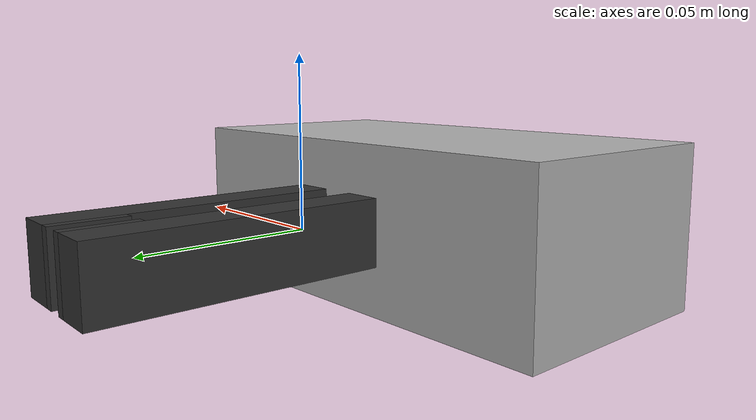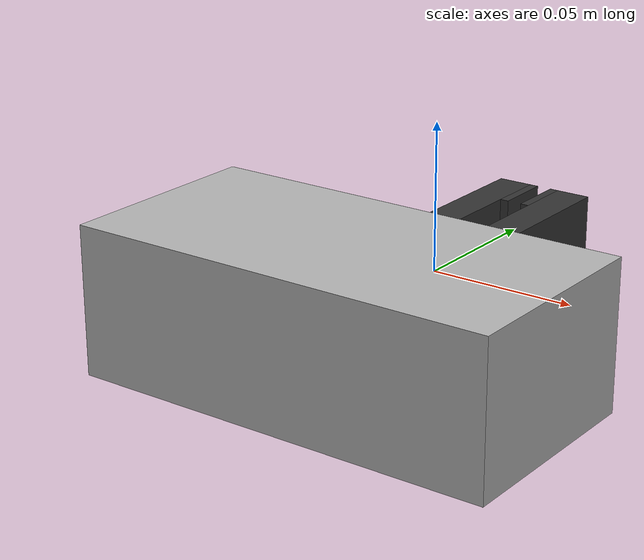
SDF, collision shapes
<?xml version="1.0"?>
<!-- This sdf file is based on schunk_wsg_50.sdf -->
<sdf version="1.7">
  <model name="Schunk_Gripper">
    <link name="body">
      <pose>0 -0.049133 0 0 0 0</pose>
      <inertial>
        <mass>0.988882</mass>
        <inertia>
          <ixx>0.162992</ixx>
          <ixy>0</ixy>
          <ixz>0</ixz>
          <iyy>0.162992</iyy>
          <iyz>0</iyz>
          <izz>0.164814</izz>
        </inertia>
      </inertial>
      <kinematic>0</kinematic>
      <visual name="visual">
        <geometry>
          <mesh>
            <scale>1 1 1</scale>
            <uri>package://drake_models/wsg_50_description/meshes/wsg_body.gltf</uri>
          </mesh>
        </geometry>
        <material>
          <diffuse>0.7 0.7 0.7 1</diffuse>
        </material>
      </visual>
      <collision name="collision">
        <geometry>
          <box>
            <size>0.146 0.0725 0.05</size>
          </box>
        </geometry>
        <drake:proximity_properties>
          <drake:compliant_hydroelastic/>
          <drake:hydroelastic_modulus>1.0e4</drake:hydroelastic_modulus>
        </drake:proximity_properties>
      </collision>
    </link>
    <frame name="body_frame">
      <pose relative_to="body"/>
    </frame>
    <link name="left_finger">
      <pose>-0.0115 0.028 0 0 3.141592 0</pose>
      <inertial>
        <mass>0.05</mass>
        <inertia>
          <ixx>0.16</ixx>
          <ixy>0</ixy>
          <ixz>0</ixz>
          <iyy>0.16</iyy>
          <iyz>0</iyz>
          <izz>0.16</izz>
        </inertia>
      </inertial>
      <kinematic>0</kinematic>
      <visual name="visual">
        <geometry>
          <mesh>
            <scale>1 1 1</scale>
            <uri>package://drake_models/wsg_50_description/meshes/finger_with_tip.obj</uri>
          </mesh>
        </geometry>
        <material>
          <diffuse>0.2 0.2 0.2 1</diffuse>
        </material>
      </visual>
      <collision name="left_tip">
        <pose> -0.0075 0.031 0 0 0 0 </pose>
        <geometry>
          <box>
            <size>0.003 0.02 0.02</size>
          </box>
        </geometry>
        <drake:proximity_properties>
          <drake:compliant_hydroelastic/>
          <drake:hydroelastic_modulus>1.0e4</drake:hydroelastic_modulus>
          <drake:mu_static>100.0</drake:mu_static>
          <drake:mu_dynamic>100.0</drake:mu_dynamic>
        </drake:proximity_properties>
      </collision>
      <collision name="collision">
        <geometry>
          <box>
            <size>0.012 0.082 0.02</size>
          </box>
        </geometry>
        <drake:proximity_properties>
          <drake:compliant_hydroelastic/>
          <drake:hydroelastic_modulus>1.0e4</drake:hydroelastic_modulus>
          <drake:mu_static>100.0</drake:mu_static>
          <drake:mu_dynamic>100.0</drake:mu_dynamic>
        </drake:proximity_properties>
      </collision>
    </link>
    <link name="right_finger">
      <pose>0.0115 0.028 0 0 0 0</pose>
      <inertial>
        <mass>0.05</mass>
        <inertia>
          <ixx>0.16</ixx>
          <ixy>0</ixy>
          <ixz>0</ixz>
          <iyy>0.16</iyy>
          <iyz>0</iyz>
          <izz>0.16</izz>
        </inertia>
      </inertial>
      <kinematic>0</kinematic>
      <visual name="visual">
        <geometry>
          <mesh>
            <scale>1 1 1</scale>
            <uri>package://drake_models/wsg_50_description/meshes/finger_with_tip.obj</uri>
          </mesh>
        </geometry>
        <material>
          <diffuse>0.2 0.2 0.2 1</diffuse>
        </material>
      </visual>
      <collision name="left_tip">
        <pose> -0.0075 0.031 0 0 0 0 </pose>
        <geometry>
          <box>
            <size>0.003 0.02 0.02</size>
          </box>
        </geometry>
        <drake:proximity_properties>
          <drake:compliant_hydroelastic/>
          <drake:hydroelastic_modulus>1.0e4</drake:hydroelastic_modulus>
          <drake:mu_static>100.0</drake:mu_static>
          <drake:mu_dynamic>100.0</drake:mu_dynamic>
        </drake:proximity_properties>
      </collision>
      <collision name="collision">
        <geometry>
          <box>
            <size>0.012 0.082 0.02</size>
          </box>
        </geometry>
        <drake:proximity_properties>
          <drake:compliant_hydroelastic/>
          <drake:hydroelastic_modulus>1.0e4</drake:hydroelastic_modulus>
          <drake:mu_static>100.0</drake:mu_static>
          <drake:mu_dynamic>100.0</drake:mu_dynamic>
        </drake:proximity_properties>
      </collision>
    </link>
    <joint name="left_finger_sliding_joint" type="prismatic">
      <parent>body</parent>
      <child>left_finger</child>
      <axis>
        <xyz>-1 0 0</xyz>
        <!-- Drake attaches an actuator to all and only joints with a nonzero
             effort limit. -->
        <limit>
          <lower>-0.055</lower>
          <upper>0</upper>
          <effort>80</effort>
          <stiffness>15000</stiffness>
        </limit>
        <dynamics>
          <spring_reference>0</spring_reference>
          <spring_stiffness>0</spring_stiffness>
          <damping>0</damping>
          <friction>0</friction>
        </dynamics>
      </axis>
    </joint>
    <joint name="right_finger_sliding_joint" type="prismatic">
      <parent>body</parent>
      <child>right_finger</child>
      <axis>
        <xyz>1 0 0</xyz>
        <!-- Drake attaches an actuator to all and only joints with a nonzero
             effort limit. -->
        <limit>
          <lower>0</lower>
          <upper>0.055</upper>
          <effort>80</effort>
          <stiffness>15000</stiffness>
        </limit>
        <dynamics>
          <spring_reference>0</spring_reference>
          <spring_stiffness>0</spring_stiffness>
          <damping>0</damping>
          <friction>0</friction>
        </dynamics>
      </axis>
    </joint>
    <static>0</static>
  </model>
</sdf>
